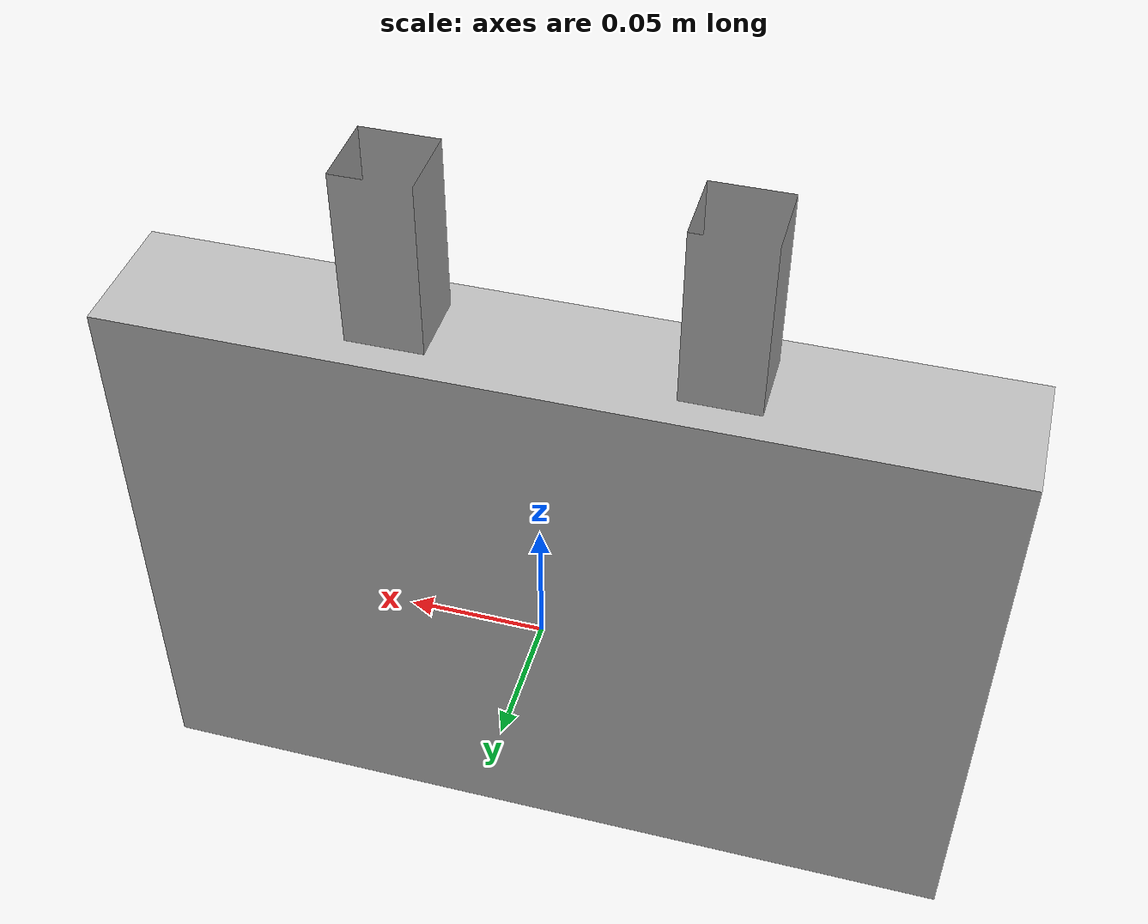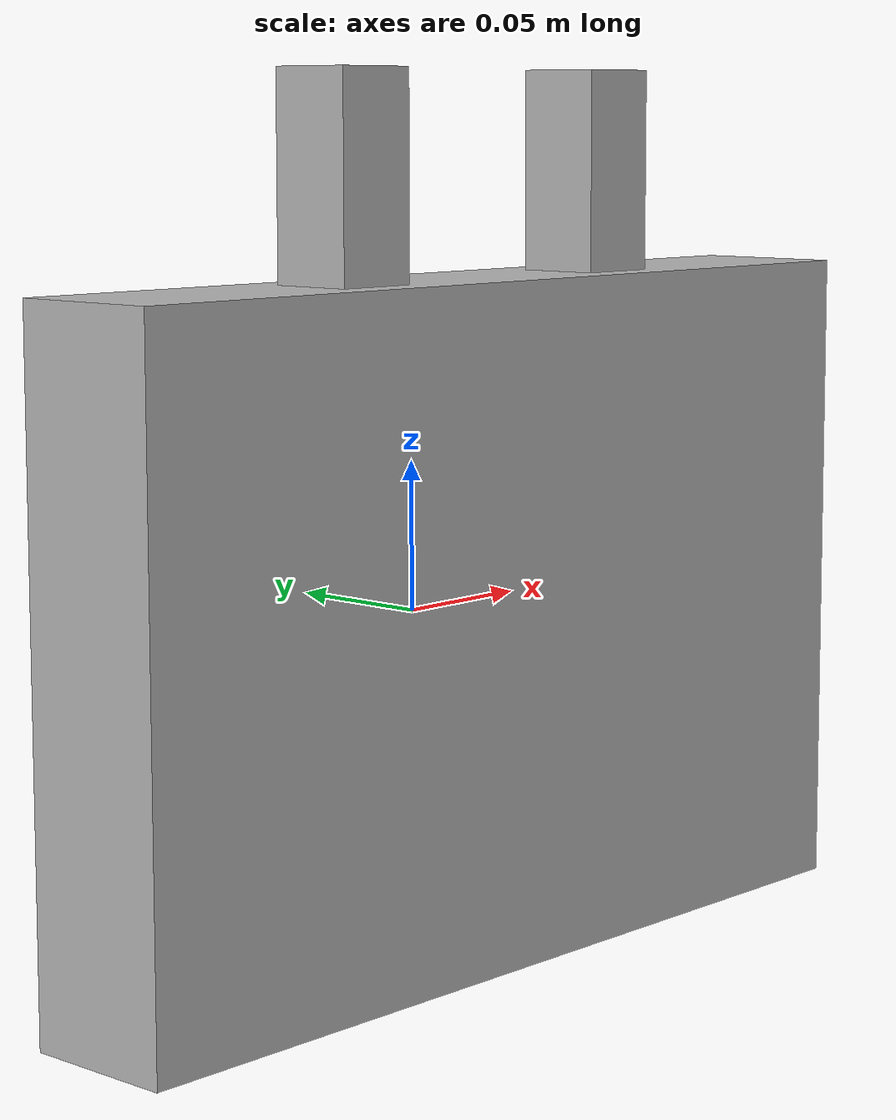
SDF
<?xml version='1.0'?>
<sdf version='1.6'>
  <model name='Exit sign'>
    <static>true</static>
    <link name='link'>
      <collision name='collision'>
        <geometry>
          <mesh>
            <uri>model://Exit sign/meshes/Exit sign.dae</uri>
          </mesh>
        </geometry>
      </collision>
      <visual name='visual'>
        <geometry>
          <mesh>
            <uri>model://Exit sign/meshes/Exit sign.dae</uri>
          </mesh>
        </geometry>
      </visual>
    </link>
  </model>
</sdf>
